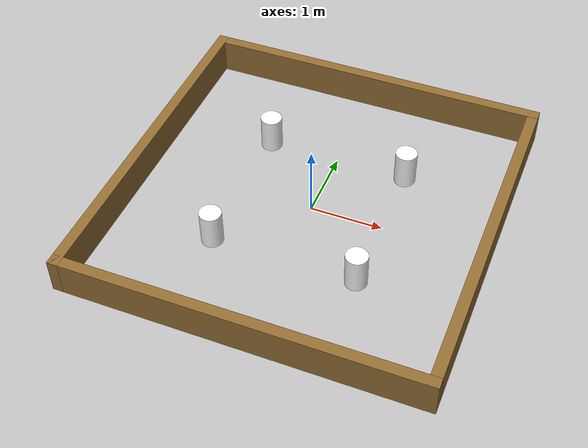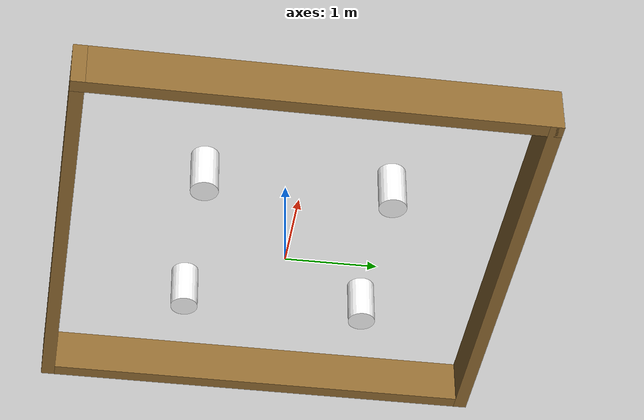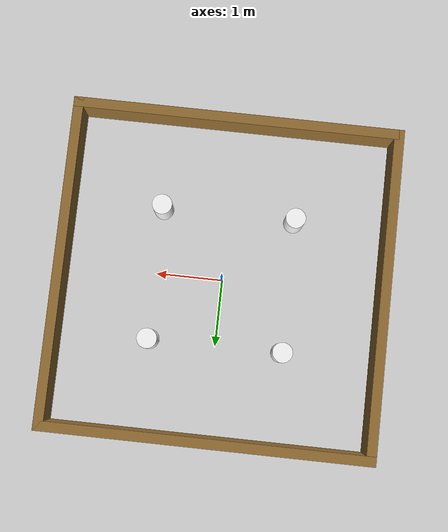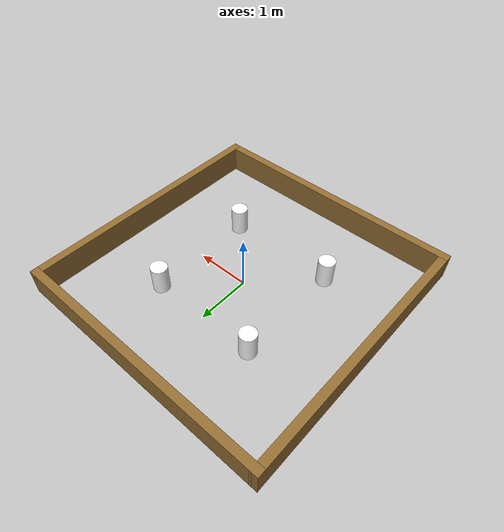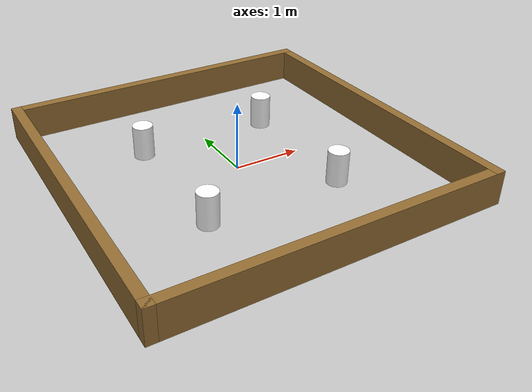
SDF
<?xml version="1.0"?>
<sdf version="1.6">

  <model name='turtlebot3_stage2'>
    <pose frame=''>0 0 0 0 0 0</pose>
    <link name='Wall_1'>
      <collision name='Wall_1_Collision'>
        <geometry>
          <box>
            <size>5 0.15 0.5</size>
          </box>
        </geometry>
        <pose frame=''>0 0 0.25 0 -0 0</pose>
      </collision>
      <visual name='Wall_1_Visual'>
        <pose frame=''>0 0 0.25 0 -0 0</pose>
        <geometry>
          <box>
            <size>5 0.15 0.5</size>
          </box>
        </geometry>
        <material>
            <ambient>0.58 0.43 0.2 1.0</ambient>
            <diffuse>0.58 0.43 0.2 1.0</diffuse>
            <specular>0.1 0.1 0.1 1.0</specular>
        </material>
      </visual>
      <pose frame=''>-2.425 0 0 0 -0 1.5708</pose>
    </link>
    <link name='Wall_2'>
      <collision name='Wall_2_Collision'>
        <geometry>
          <box>
            <size>5 0.15 0.5</size>
          </box>
        </geometry>
        <pose frame=''>0 0 0.25 0 -0 0</pose>
      </collision>
      <visual name='Wall_2_Visual'>
        <pose frame=''>0 0 0.25 0 -0 0</pose>
        <geometry>
          <box>
            <size>5 0.15 0.5</size>
          </box>
        </geometry>
        <material>
            <ambient>0.58 0.43 0.2 1.0</ambient>
            <diffuse>0.58 0.43 0.2 1.0</diffuse>
            <specular>0.1 0.1 0.1 1.0</specular>
         </material>
      </visual>
      <pose frame=''>0 2.425 0 0 -0 0</pose>
    </link>
    <link name='Wall_3'>
      <collision name='Wall_3_Collision'>
        <geometry>
          <box>
            <size>5 0.15 0.5</size>
          </box>
        </geometry>
        <pose frame=''>0 0 0.25 0 -0 0</pose>
      </collision>
      <visual name='Wall_3_Visual'>
        <pose frame=''>0 0 0.25 0 -0 0</pose>
        <geometry>
          <box>
            <size>5 0.15 0.5</size>
          </box>
        </geometry>
        <material>
            <ambient>0.58 0.43 0.2 1.0</ambient>
            <diffuse>0.58 0.43 0.2 1.0</diffuse>
            <specular>0.1 0.1 0.1 1.0</specular>
        </material>
      </visual>
      <pose frame=''>2.425 0 0 0 0 -1.5708</pose>
    </link>
    <link name='Wall_4'>
      <collision name='Wall_4_Collision'>
        <geometry>
          <box>
            <size>5 0.15 0.5</size>
          </box>
        </geometry>
        <pose frame=''>0 0 0.25 0 -0 0</pose>
      </collision>
      <visual name='Wall_4_Visual'>
        <pose frame=''>0 0 0.25 0 -0 0</pose>
        <geometry>
          <box>
            <size>5 0.15 0.5</size>
          </box>
        </geometry>
        <material>
            <ambient>0.58 0.43 0.2 1.0</ambient>
            <diffuse>0.58 0.43 0.2 1.0</diffuse>
            <specular>0.1 0.1 0.1 1.0</specular>
        </material>
      </visual>
      <pose frame=''>0 -2.425 0 0 -0 3.14159</pose>
    </link>

    <link name='obstacle'>
      <collision name='obstacle_1'>
        <pose>-1.0 -1.0 0.25 0 0 0</pose>
        <geometry>
          <cylinder>
            <radius>0.15</radius>
            <length>0.5</length>
          </cylinder>
        </geometry>
        <max_contacts>10</max_contacts>
        <surface>
          <bounce/>
          <friction>
            <ode/>
          </friction>
          <contact>
            <ode/>
          </contact>
        </surface>
      </collision>

      <visual name='obstacle_1'>
        <pose>-1.0 -1.0 0.25 0 0 0</pose>
        <geometry>
          <cylinder>
            <radius>0.15</radius>
            <length>0.5</length>
          </cylinder>
        </geometry>
        <material>
            <ambient>1.0 1.0 1.0 1.0</ambient>
            <diffuse>1.0 1.0 1.0 1.0</diffuse>
            <specular>0.1 0.1 0.1 1.0</specular>
        </material>
      </visual>

      <collision name='obstacle_2'>
        <pose>-1.0 1.0 0.25 0 0 0</pose>
        <geometry>
          <cylinder>
            <radius>0.15</radius>
            <length>0.5</length>
          </cylinder>
        </geometry>
        <max_contacts>10</max_contacts>
        <surface>
          <bounce/>
          <friction>
            <ode/>
          </friction>
          <contact>
            <ode/>
          </contact>
        </surface>
      </collision>

      <visual name='obstacle_2'>
        <pose>-1.0 1.0 0.25 0 0 0</pose>
        <geometry>
          <cylinder>
            <radius>0.15</radius>
            <length>0.5</length>
          </cylinder>
        </geometry>
        <material>
           <ambient>1.0 1.0 1.0 1.0</ambient>
            <diffuse>1.0 1.0 1.0 1.0</diffuse>
            <specular>0.1 0.1 0.1 1.0</specular>
         </material>
      </visual>

      <collision name='obstacle_3'>
        <pose>1.0 -1.0 0.25 0 0 0</pose>
        <geometry>
          <cylinder>
            <radius>0.15</radius>
            <length>0.5</length>
          </cylinder>
        </geometry>
        <max_contacts>10</max_contacts>
        <surface>
          <bounce/>
          <friction>
            <ode/>
          </friction>
          <contact>
            <ode/>
          </contact>
        </surface>
      </collision>

      <visual name='obstacle_3'>
        <pose>1.0 -1.0 0.25 0 0 0</pose>
        <geometry>
          <cylinder>
            <radius>0.15</radius>
            <length>0.5</length>
          </cylinder>
        </geometry>
        <material>
           <ambient>1.0 1.0 1.0 1.0</ambient>
            <diffuse>1.0 1.0 1.0 1.0</diffuse>
            <specular>0.1 0.1 0.1 1.0</specular>
         </material>
      </visual>

      <collision name='obstacle_4'>
        <pose>1.0 1.0 0.25 0 0 0</pose>
        <geometry>
          <cylinder>
            <radius>0.15</radius>
            <length>0.5</length>
          </cylinder>
        </geometry>
        <max_contacts>10</max_contacts>
        <surface>
          <bounce/>
          <friction>
            <ode/>
          </friction>
          <contact>
            <ode/>
          </contact>
        </surface>
      </collision>

      <visual name='obstacle_4'>
        <pose>1.0 1.0 0.25 0 0 0</pose>
        <geometry>
          <cylinder>
            <radius>0.15</radius>
            <length>0.5</length>
          </cylinder>
        </geometry>
        <material>
           <ambient>1.0 1.0 1.0 1.0</ambient>
            <diffuse>1.0 1.0 1.0 1.0</diffuse>
            <specular>0.1 0.1 0.1 1.0</specular>
         </material>
      </visual>
    </link>

    <static>1</static>

  </model>
</sdf>
